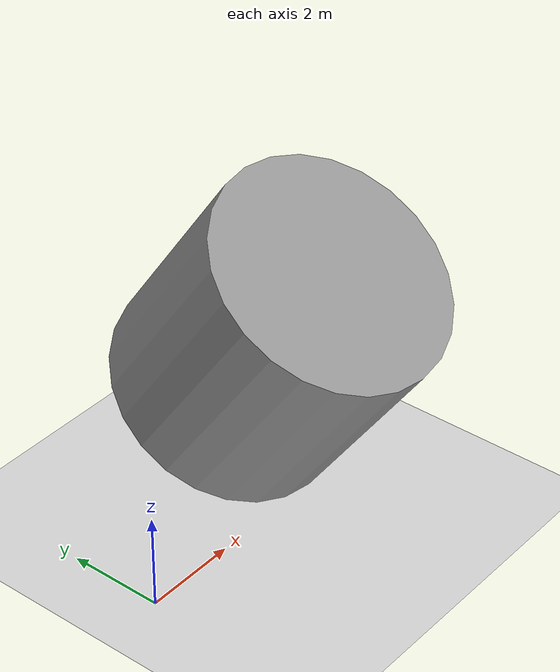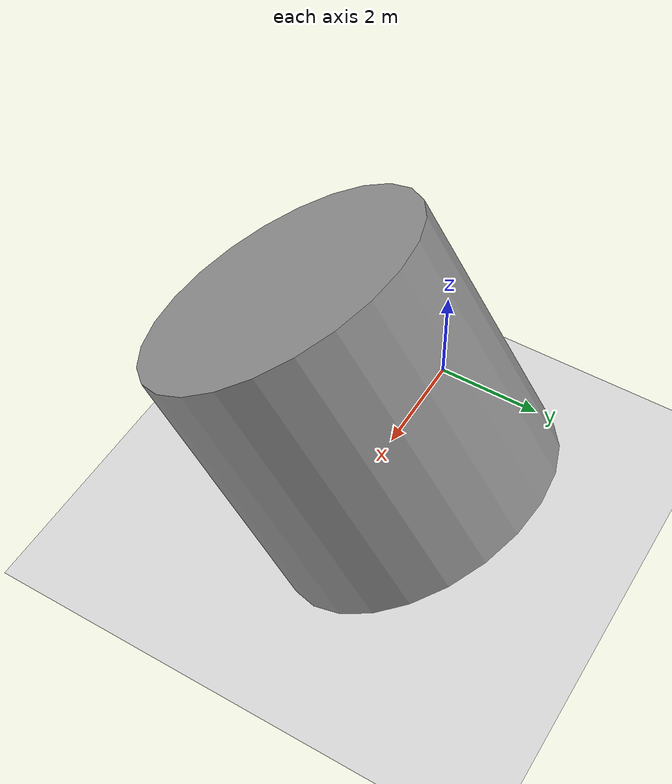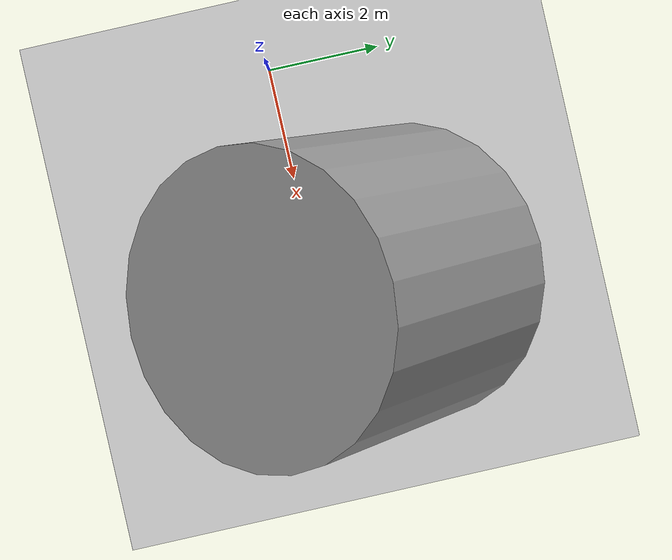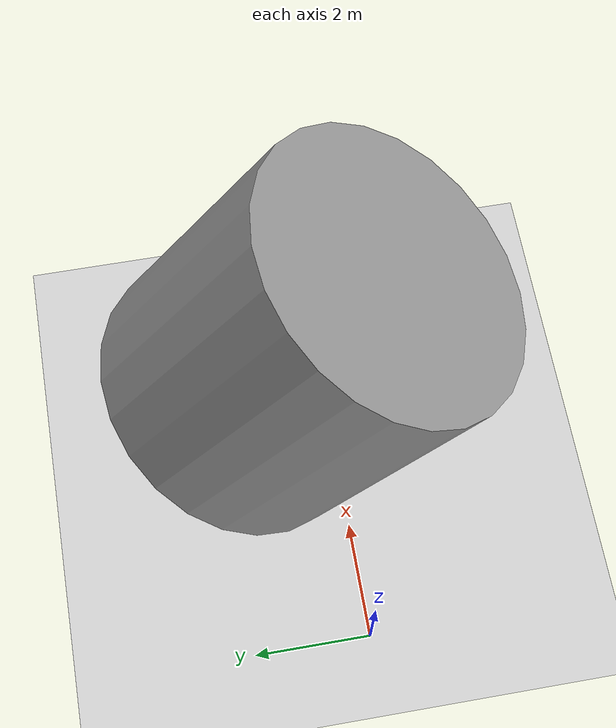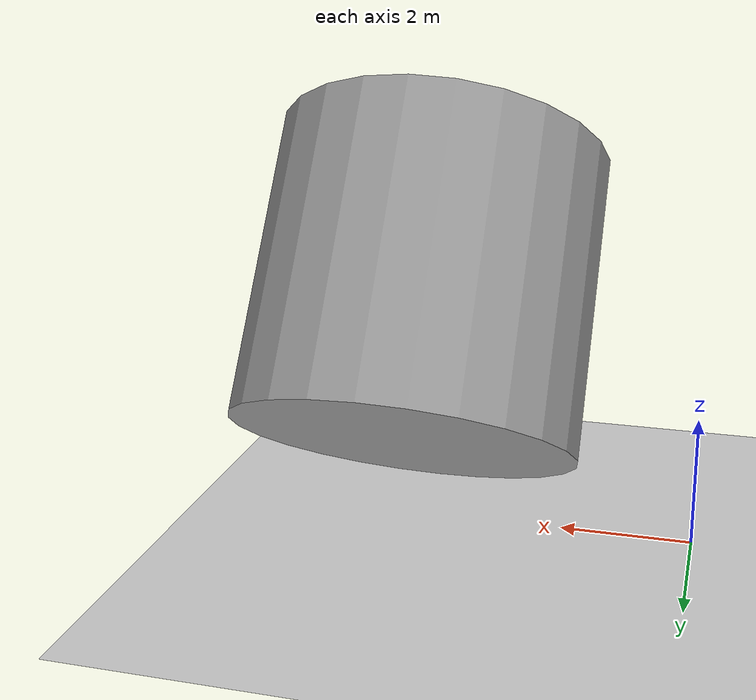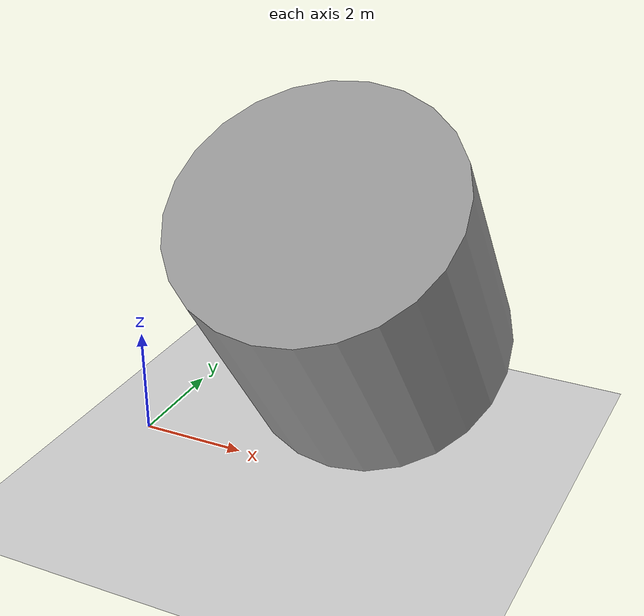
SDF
<?xml version="1.0" ?>
<sdf version="1.5">
  <world name="default">
    <!-- A global light source -->
    <include>
      <uri>model://sun</uri>
    </include>
    <!-- A ground plane -->
    <include>
      <uri>model://ground_plane</uri>
    </include>
    <include>
      <uri>model://asphalt_plane</uri>
    </include>

    <model name='cylinder'>
      <pose>4.049180 0.373513 3.775661 0.605263 -0 0</pose>
      <link name='cylinder_link'>
        <collision name='cylinder_Collision'>
          <geometry>
            <cylinder>
              <radius>2.5</radius>
              <length>4.5</length>
            </cylinder>
          </geometry>
          <max_contacts>10</max_contacts>
          <surface>
            <contact>
              <ode/>
            </contact>
            <bounce/>
            <friction>
              <torsional>
                <ode/>
              </torsional>
              <ode/>
            </friction>
          </surface>
        </collision>
        <visual name='cylinder_Visual'>
          <geometry>
            <cylinder>
              <radius>2.5</radius>
              <length>4.5</length>
            </cylinder>
          </geometry>
          <material>
            <script>
              <uri>file://media/materials/scripts/gazebo.material</uri>
              <name>Gazebo/Grey</name>
            </script>
            <ambient>1 1 1 1</ambient>
          </material>
          <meta>
            <layer>0</layer>
          </meta>
        </visual>
        <self_collide>0</self_collide>
        <enable_wind>0</enable_wind>
        <kinematic>0</kinematic>
      </link>
      <static>1</static>
    </model>

    <light name='user_point_light_0' type='point'>
      <pose>-0.191859 0.550154 7.02258 0 -0 0</pose>
      <diffuse>0.5 0.5 0.5 1</diffuse>
      <specular>0.1 0.1 0.1 1</specular>
      <attenuation>
        <range>20</range>
        <constant>0.5</constant>
        <linear>0.01</linear>
        <quadratic>0.001</quadratic>
      </attenuation>
      <cast_shadows>0</cast_shadows>
      <direction>0 0 -1</direction>
    </light>
    <physics name='default_physics' default='0' type='ode'>
      <gravity>0 0 -9.8066</gravity>
      <ode>
        <solver>
          <type>quick</type>
          <iters>20</iters>
          <sor>1.0</sor>
          <use_dynamic_moi_rescaling>0</use_dynamic_moi_rescaling>
        </solver>
        <constraints>
          <cfm>0</cfm>
          <erp>0.2</erp>
          <contact_max_correcting_vel>100</contact_max_correcting_vel>
          <contact_surface_layer>0.001</contact_surface_layer>
        </constraints>
      </ode>
      <max_step_size>0.004</max_step_size>
      <real_time_factor>1</real_time_factor>
      <real_time_update_rate>250</real_time_update_rate>
      <magnetic_field>6.0e-6 2.3e-5 -4.2e-5</magnetic_field>
    </physics>
  </world>
</sdf>
